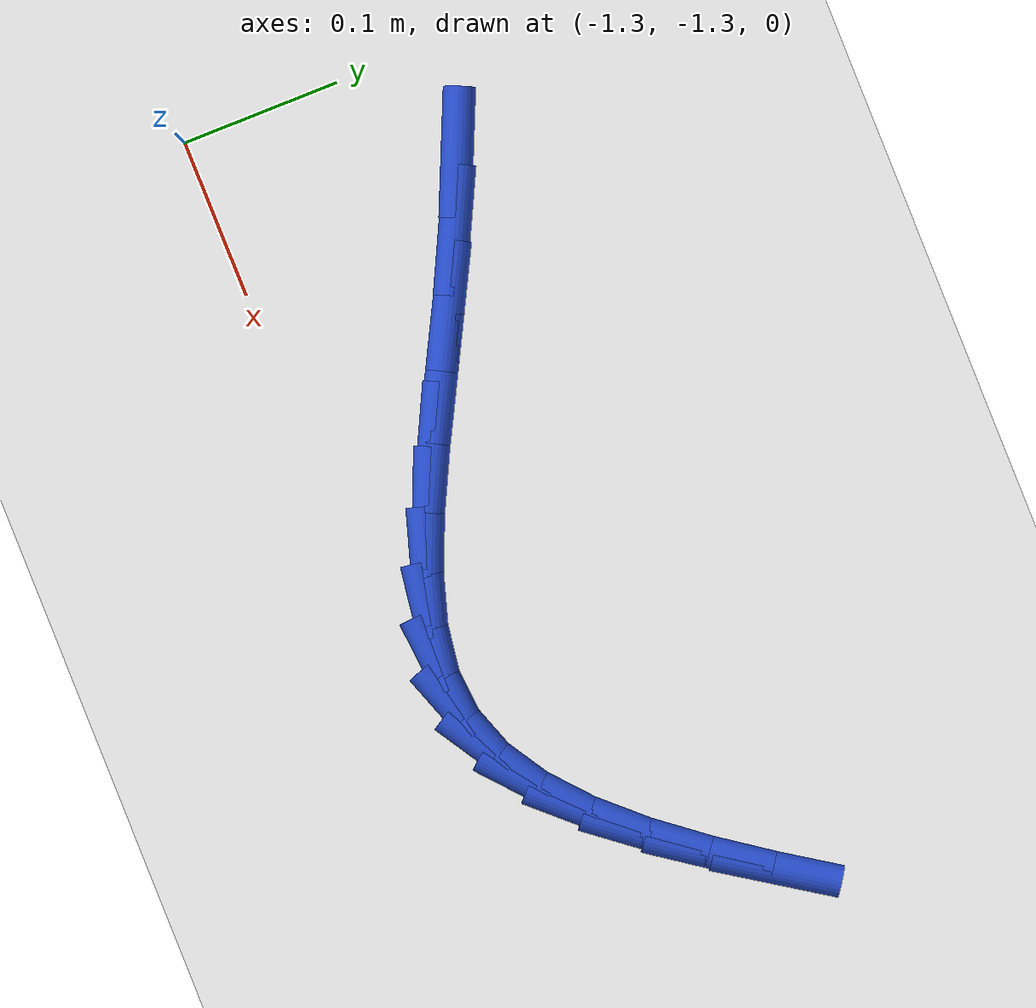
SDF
<sdf version="1.6">
 <world name="default">
  <model name="ground_plane">
   <static>1</static>
   <link name="link">
    <collision name="collision">
     <geometry><plane><normal>0 0 1</normal><size>100 100</size></plane></geometry>
     <surface><friction><ode><mu>100</mu><mu2>50</mu2></ode></friction></surface>
    </collision>
    <visual name="visual">
     <cast_shadows>0</cast_shadows>
     <geometry><plane><normal>0 0 1</normal><size>100 100</size></plane></geometry>
     <material>
      <script><uri>file://media/materials/scripts/gazebo.material</uri><name>Gazebo/WhiteGlow</name></script>
     </material>
    </visual>
   </link>
  </model>
  <model name="line">
   <link name="link_141">
    <pose>-1.232565777681087 -1.1478834215133433 0.01 0 1.57 -0.4135558602421866</pose>
    <collision name="collision">
     <geometry><cylinder><radius>0.01</radius><length>0.08</length></cylinder></geometry>
    </collision>
    <visual name="visual">
     <material>
      <script><name>Gazebo/Blue</name><uri>file://media/materials/scripts/gazebo.material</uri></script>
     </material>
     <geometry><cylinder><radius>0.01</radius><length>0.08</length></cylinder></geometry>
    </visual>
   </link>
   <link name="link_142">
    <pose>-1.189126758706352 -1.1669473015070422 0.01 0 1.57 -0.45915631408050606</pose>
    <collision name="collision">
     <geometry><cylinder><radius>0.01</radius><length>0.08</length></cylinder></geometry>
    </collision>
    <visual name="visual">
     <material>
      <script><name>Gazebo/Blue</name><uri>file://media/materials/scripts/gazebo.material</uri></script>
     </material>
     <geometry><cylinder><radius>0.01</radius><length>0.08</length></cylinder></geometry>
    </visual>
   </link>
   <link name="link_143">
    <pose>-1.147825524153076 -1.1873665667320459 0.01 0 1.57 -0.4835580452578987</pose>
    <collision name="collision">
     <geometry><cylinder><radius>0.01</radius><length>0.08</length></cylinder></geometry>
    </collision>
    <visual name="visual">
     <material>
      <script><name>Gazebo/Blue</name><uri>file://media/materials/scripts/gazebo.material</uri></script>
     </material>
     <geometry><cylinder><radius>0.01</radius><length>0.08</length></cylinder></geometry>
    </visual>
   </link>
   <link name="link_144">
    <pose>-1.1085657206927568 -1.2079835250283573 0.01 0 1.57 -0.4848478348402818</pose>
    <collision name="collision">
     <geometry><cylinder><radius>0.01</radius><length>0.08</length></cylinder></geometry>
    </collision>
    <visual name="visual">
     <material>
      <script><name>Gazebo/Blue</name><uri>file://media/materials/scripts/gazebo.material</uri></script>
     </material>
     <geometry><cylinder><radius>0.01</radius><length>0.08</length></cylinder></geometry>
    </visual>
   </link>
   <link name="link_145">
    <pose>-1.0712509949968927 -1.2276404842359798 0.01 0 1.57 -0.4592680758178533</pose>
    <collision name="collision">
     <geometry><cylinder><radius>0.01</radius><length>0.08</length></cylinder></geometry>
    </collision>
    <visual name="visual">
     <material>
      <script><name>Gazebo/Blue</name><uri>file://media/materials/scripts/gazebo.material</uri></script>
     </material>
     <geometry><cylinder><radius>0.01</radius><length>0.08</length></cylinder></geometry>
    </visual>
   </link>
   <link name="link_146">
    <pose>-1.0357849937369792 -1.2451797521949175 0.01 0 1.57 -0.40025136539277467</pose>
    <collision name="collision">
     <geometry><cylinder><radius>0.01</radius><length>0.08</length></cylinder></geometry>
    </collision>
    <visual name="visual">
     <material>
      <script><name>Gazebo/Blue</name><uri>file://media/materials/scripts/gazebo.material</uri></script>
     </material>
     <geometry><cylinder><radius>0.01</radius><length>0.08</length></cylinder></geometry>
    </visual>
   </link>
   <link name="link_147">
    <pose>-1.0020713635845162 -1.2594436367451742 0.01 0 1.57 -0.2975562461753521</pose>
    <collision name="collision">
     <geometry><cylinder><radius>0.01</radius><length>0.08</length></cylinder></geometry>
    </collision>
    <visual name="visual">
     <material>
      <script><name>Gazebo/Blue</name><uri>file://media/materials/scripts/gazebo.material</uri></script>
     </material>
     <geometry><cylinder><radius>0.01</radius><length>0.08</length></cylinder></geometry>
    </visual>
   </link>
   <link name="link_148">
    <pose>-0.9700137512110003 -1.2692744457267526 0.01 0 1.57 -0.1381416164712747</pose>
    <collision name="collision">
     <geometry><cylinder><radius>0.01</radius><length>0.08</length></cylinder></geometry>
    </collision>
    <visual name="visual">
     <material>
      <script><name>Gazebo/Blue</name><uri>file://media/materials/scripts/gazebo.material</uri></script>
     </material>
     <geometry><cylinder><radius>0.01</radius><length>0.08</length></cylinder></geometry>
    </visual>
   </link>
   <link name="link_149">
    <pose>-0.9395158032879293 -1.273514486979656 0.01 0 1.57 0.08611864050098077</pose>
    <collision name="collision">
     <geometry><cylinder><radius>0.01</radius><length>0.08</length></cylinder></geometry>
    </collision>
    <visual name="visual">
     <material>
      <script><name>Gazebo/Blue</name><uri>file://media/materials/scripts/gazebo.material</uri></script>
     </material>
     <geometry><cylinder><radius>0.01</radius><length>0.08</length></cylinder></geometry>
    </visual>
   </link>
   <link name="link_150">
    <pose>-0.9104810424507446 -1.2710078530328266 0.01 0 1.57 0.34229196501012</pose>
    <collision name="collision">
     <geometry><cylinder><radius>0.01</radius><length>0.08</length></cylinder></geometry>
    </collision>
    <visual name="visual">
     <material>
      <script><name>Gazebo/Blue</name><uri>file://media/materials/scripts/gazebo.material</uri></script>
     </material>
     <geometry><cylinder><radius>0.01</radius><length>0.08</length></cylinder></geometry>
    </visual>
   </link>
   <link name="link_151">
    <pose>-0.8827756493658092 -1.2611359301747638 0.01 0 1.57 0.5570563989915513</pose>
    <collision name="collision">
     <geometry><cylinder><radius>0.01</radius><length>0.08</length></cylinder></geometry>
    </collision>
    <visual name="visual">
     <material>
      <script><name>Gazebo/Blue</name><uri>file://media/materials/scripts/gazebo.material</uri></script>
     </material>
     <geometry><cylinder><radius>0.01</radius><length>0.08</length></cylinder></geometry>
    </visual>
   </link>
   <link name="link_152">
    <pose>-0.8561762724440354 -1.2445683367642475 0.01 0 1.57 0.7164245969500902</pose>
    <collision name="collision">
     <geometry><cylinder><radius>0.01</radius><length>0.08</length></cylinder></geometry>
    </collision>
    <visual name="visual">
     <material>
      <script><name>Gazebo/Blue</name><uri>file://media/materials/scripts/gazebo.material</uri></script>
     </material>
     <geometry><cylinder><radius>0.01</radius><length>0.08</length></cylinder></geometry>
    </visual>
   </link>
   <link name="link_153">
    <pose>-0.8304464196569153 -1.2221637619635328 0.01 0 1.57 0.8289312358639562</pose>
    <collision name="collision">
     <geometry><cylinder><radius>0.01</radius><length>0.08</length></cylinder></geometry>
    </collision>
    <visual name="visual">
     <material>
      <script><name>Gazebo/Blue</name><uri>file://media/materials/scripts/gazebo.material</uri></script>
     </material>
     <geometry><cylinder><radius>0.01</radius><length>0.08</length></cylinder></geometry>
    </visual>
   </link>
   <link name="link_154">
    <pose>-0.8053495989759438 -1.194780894934875 0.01 0 1.57 0.9058418279029945</pose>
    <collision name="collision">
     <geometry><cylinder><radius>0.01</radius><length>0.08</length></cylinder></geometry>
    </collision>
    <visual name="visual">
     <material>
      <script><name>Gazebo/Blue</name><uri>file://media/materials/scripts/gazebo.material</uri></script>
     </material>
     <geometry><cylinder><radius>0.01</radius><length>0.08</length></cylinder></geometry>
    </visual>
   </link>
   <link name="link_155">
    <pose>-0.7806493183726145 -1.1632784248405288 0.01 0 1.57 0.9561070095490355</pose>
    <collision name="collision">
     <geometry><cylinder><radius>0.01</radius><length>0.08</length></cylinder></geometry>
    </collision>
    <visual name="visual">
     <material>
      <script><name>Gazebo/Blue</name><uri>file://media/materials/scripts/gazebo.material</uri></script>
     </material>
     <geometry><cylinder><radius>0.01</radius><length>0.08</length></cylinder></geometry>
    </visual>
   </link>
   <link name="link_156">
    <pose>-0.7561090858184215 -1.1285150408427491 0.01 0 1.57 0.9857874761430786</pose>
    <collision name="collision">
     <geometry><cylinder><radius>0.01</radius><length>0.08</length></cylinder></geometry>
    </collision>
    <visual name="visual">
     <material>
      <script><name>Gazebo/Blue</name><uri>file://media/materials/scripts/gazebo.material</uri></script>
     </material>
     <geometry><cylinder><radius>0.01</radius><length>0.08</length></cylinder></geometry>
    </visual>
   </link>
  </model>
 </world>
</sdf>
